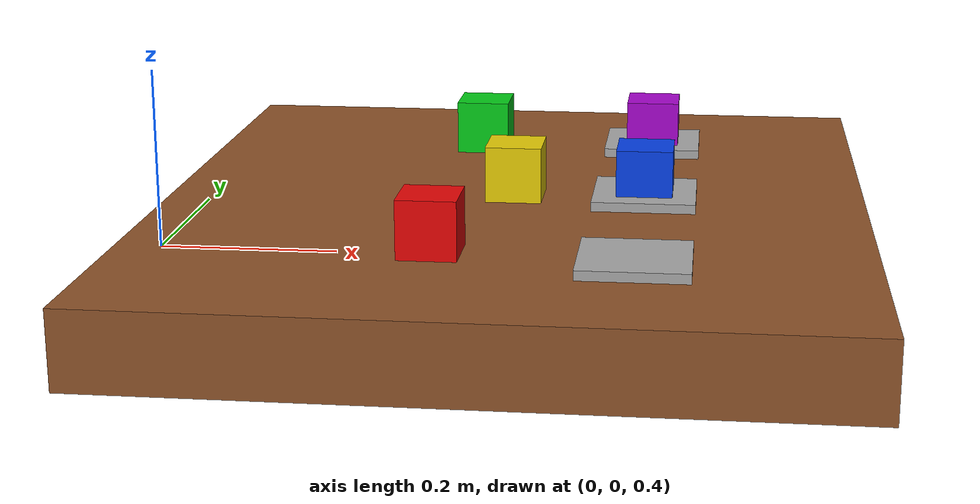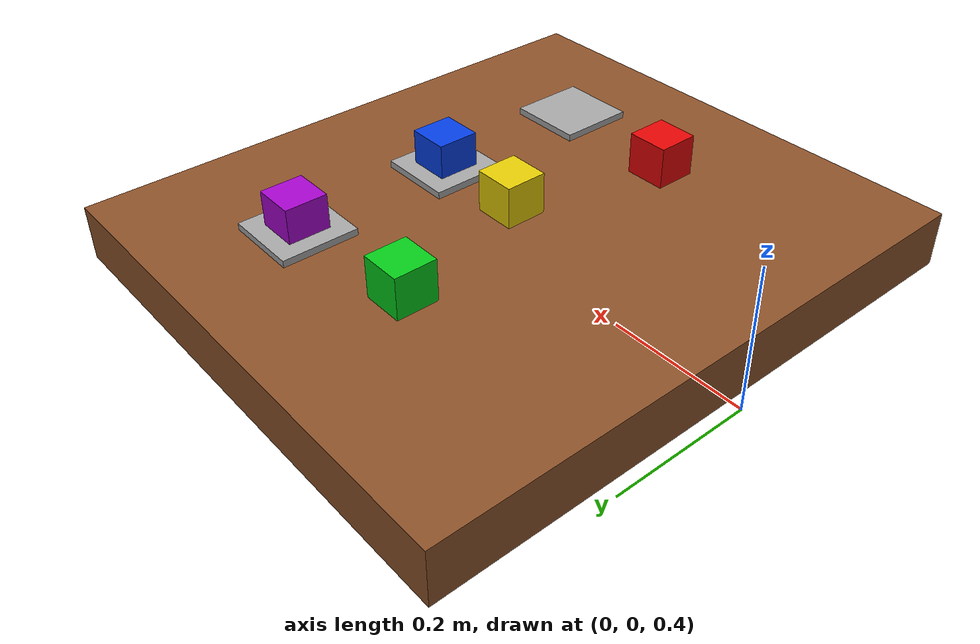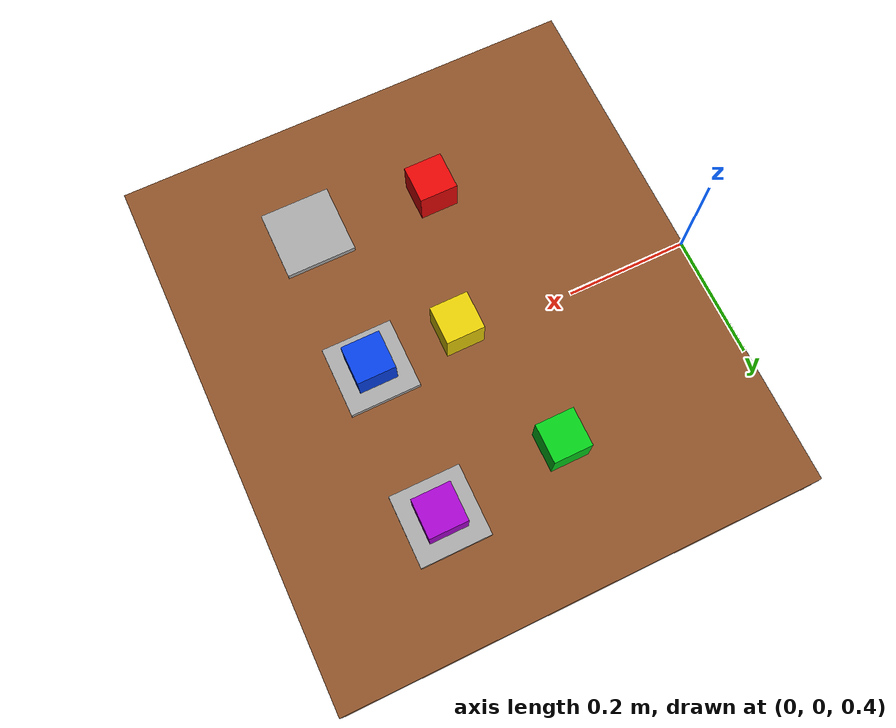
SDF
<?xml version='1.0' encoding='utf-8'?>
<sdf version="1.7">
  <world name="ur3_llm_task_world">
    <physics name="default_physics" type="ode">
      <max_step_size>0.001</max_step_size>
      <real_time_factor>1</real_time_factor>
    </physics>
    <plugin filename="ignition-gazebo-physics-system" name="ignition::gazebo::systems::Physics" />
    <plugin filename="ignition-gazebo-user-commands-system" name="ignition::gazebo::systems::UserCommands" />
    <plugin filename="ignition-gazebo-scene-broadcaster-system" name="ignition::gazebo::systems::SceneBroadcaster" />
    <light type="directional" name="sun">
      <pose>0 0 4 0 0 0</pose>
      <diffuse>0.8 0.8 0.8 1</diffuse>
      <direction>-0.4 0.3 -1</direction>
    </light>
    <model name="worktable">
      <static>true</static>
      <pose>0.40 0 0.43 0 0 0</pose>
      <link name="table_link">
        <collision name="collision">
          <geometry>
            <box>
              <size>0.75 0.85 0.08</size>
            </box>
          </geometry>
        </collision>
        <visual name="visual">
          <geometry>
            <box>
              <size>0.75 0.85 0.08</size>
            </box>
          </geometry>
          <material>
            <ambient>0.35 0.22 0.12 1</ambient>
            <diffuse>0.55 0.32 0.16 1</diffuse>
          </material>
        </visual>
      </link>
    </model>
    <model name="red_cube">
      <static>false</static>
      <pose>0.34 -0.22 0.50 0 0 0</pose>
      <link name="link">
        <inertial>
          <mass>0.10</mass>
          <inertia>
            <ixx>0.00006</ixx>
            <iyy>0.00006</iyy>
            <izz>0.00006</izz>
            <ixy>0</ixy>
            <ixz>0</ixz>
            <iyz>0</iyz>
          </inertia>
        </inertial>
        <collision name="c">
          <geometry>
            <box>
              <size>0.06 0.06 0.06</size>
            </box>
          </geometry>
          <surface>
            <friction>
              <ode>
                <mu>3.0</mu>
                <mu2>3.0</mu2>
              </ode>
            </friction>
          </surface>
        </collision>
        <visual name="v">
          <geometry>
            <box>
              <size>0.06 0.06 0.06</size>
            </box>
          </geometry>
          <material>
            <ambient>0.8 0.02 0.02 1</ambient>
            <diffuse>0.9 0.02 0.02 1</diffuse>
          </material>
        </visual>
      </link>
    </model>
    <model name="yellow_cube">
      <static>false</static>
      <pose>0.40 0 0.50 0 0 0</pose>
      <link name="link">
        <inertial>
          <mass>0.10</mass>
          <inertia>
            <ixx>0.00006</ixx>
            <iyy>0.00006</iyy>
            <izz>0.00006</izz>
            <ixy>0</ixy>
            <ixz>0</ixz>
            <iyz>0</iyz>
          </inertia>
        </inertial>
        <collision name="c">
          <geometry>
            <box>
              <size>0.06 0.06 0.06</size>
            </box>
          </geometry>
          <surface>
            <friction>
              <ode>
                <mu>3.0</mu>
                <mu2>3.0</mu2>
              </ode>
            </friction>
          </surface>
        </collision>
        <visual name="v">
          <geometry>
            <box>
              <size>0.06 0.06 0.06</size>
            </box>
          </geometry>
          <material>
            <ambient>0.8 0.7 0.02 1</ambient>
            <diffuse>0.9 0.8 0.02 1</diffuse>
          </material>
        </visual>
      </link>
    </model>
    <model name="blue_cube">
      <static>false</static>
      <pose>0.54 0 0.50 0 0 0</pose>
      <link name="link">
        <inertial>
          <mass>0.10</mass>
          <inertia>
            <ixx>0.00006</ixx>
            <iyy>0.00006</iyy>
            <izz>0.00006</izz>
            <ixy>0</ixy>
            <ixz>0</ixz>
            <iyz>0</iyz>
          </inertia>
        </inertial>
        <collision name="c">
          <geometry>
            <box>
              <size>0.06 0.06 0.06</size>
            </box>
          </geometry>
          <surface>
            <friction>
              <ode>
                <mu>3.0</mu>
                <mu2>3.0</mu2>
              </ode>
            </friction>
          </surface>
        </collision>
        <visual name="v">
          <geometry>
            <box>
              <size>0.06 0.06 0.06</size>
            </box>
          </geometry>
          <material>
            <ambient>0.02 0.18 0.8 1</ambient>
            <diffuse>0.02 0.25 0.9 1</diffuse>
          </material>
        </visual>
      </link>
    </model>
    <model name="zone_a">
      <static>true</static>
      <pose>0.54 -0.24 0.475 0 0 0</pose>
      <link name="link">
        <visual name="v">
          <geometry>
            <box>
              <size>0.11 0.11 0.01</size>
            </box>
          </geometry>
          <material>
            <ambient>0.55 0.55 0.55 1</ambient>
            <diffuse>0.65 0.65 0.65 1</diffuse>
          </material>
        </visual>
      </link>
    </model>
    <model name="zone_b">
      <static>true</static>
      <pose>0.54 0 0.475 0 0 0</pose>
      <link name="link">
        <visual name="v">
          <geometry>
            <box>
              <size>0.11 0.11 0.01</size>
            </box>
          </geometry>
          <material>
            <ambient>0.55 0.55 0.55 1</ambient>
            <diffuse>0.65 0.65 0.65 1</diffuse>
          </material>
        </visual>
      </link>
    </model>
    <model name="zone_c">
      <static>true</static>
      <pose>0.54 0.24 0.475 0 0 0</pose>
      <link name="link">
        <visual name="v">
          <geometry>
            <box>
              <size>0.11 0.11 0.01</size>
            </box>
          </geometry>
          <material>
            <ambient>0.55 0.55 0.55 1</ambient>
            <diffuse>0.65 0.65 0.65 1</diffuse>
          </material>
        </visual>
      </link>
    </model>
    <plugin filename="ignition-gazebo-contact-system" name="ignition::gazebo::systems::Contact" />
    <plugin filename="ignition-gazebo-sensors-system" name="ignition::gazebo::systems::Sensors">
      <render_engine>ogre2</render_engine>
    </plugin>
    <scene>
      <ambient>0.6 0.6 0.6 1</ambient>
    </scene>
    <model name="green_cube">
      <static>false</static>
      <pose>0.34 0.22 0.50 0 0 0</pose>
      <link name="link">
        <inertial>
          <mass>0.10</mass>
          <inertia>
            <ixx>0.00006</ixx>
            <iyy>0.00006</iyy>
            <izz>0.00006</izz>
            <ixy>0</ixy>
            <ixz>0</ixz>
            <iyz>0</iyz>
          </inertia>
        </inertial>
        <collision name="c">
          <geometry>
            <box>
              <size>0.06 0.06 0.06</size>
            </box>
          </geometry>
          <surface>
            <friction>
              <ode>
                <mu>3.0</mu>
                <mu2>3.0</mu2>
              </ode>
            </friction>
          </surface>
        </collision>
        <visual name="v">
          <geometry>
            <box>
              <size>0.06 0.06 0.06</size>
            </box>
          </geometry>
          <material>
            <ambient>0.02 0.8 0.1 1</ambient>
            <diffuse>0.02 0.8 0.1 1</diffuse>
          </material>
        </visual>
      </link>
    </model>
    <model name="purple_cube">
      <static>false</static>
      <pose>0.54 0.24 0.50 0 0 0</pose>
      <link name="link">
        <inertial>
          <mass>0.10</mass>
          <inertia>
            <ixx>0.00006</ixx>
            <iyy>0.00006</iyy>
            <izz>0.00006</izz>
            <ixy>0</ixy>
            <ixz>0</ixz>
            <iyz>0</iyz>
          </inertia>
        </inertial>
        <collision name="c">
          <geometry>
            <box>
              <size>0.06 0.06 0.06</size>
            </box>
          </geometry>
          <surface>
            <friction>
              <ode>
                <mu>3.0</mu>
                <mu2>3.0</mu2>
              </ode>
            </friction>
          </surface>
        </collision>
        <visual name="v">
          <geometry>
            <box>
              <size>0.06 0.06 0.06</size>
            </box>
          </geometry>
          <material>
            <ambient>0.65 0.02 0.8 1</ambient>
            <diffuse>0.65 0.02 0.8 1</diffuse>
          </material>
        </visual>
      </link>
    </model>
    <model name="table_camera">
      <static>true</static>
      <pose>0.47 0 1.65 0 1.5707963267948966 0</pose>
      <link name="camera_link">
        <sensor name="rgb_camera" type="camera">
          <always_on>true</always_on>
          <update_rate>10</update_rate>
          <topic>/table_camera/image</topic>
          <camera>
            <horizontal_fov>1.0471975512</horizontal_fov>
            <image>
              <width>800</width>
              <height>800</height>
              <format>R8G8B8</format>
            </image>
            <clip>
              <near>0.05</near>
              <far>3</far>
            </clip>
          </camera>
        </sensor>
      </link>
    </model>
  </world>
</sdf>
